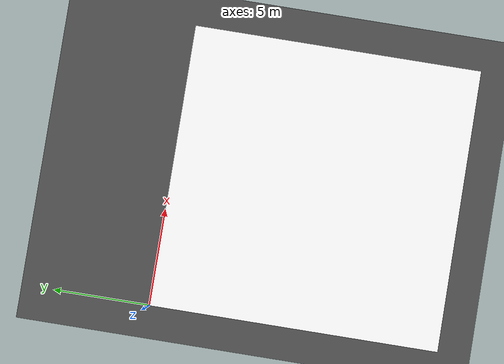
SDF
<?xml version="1.0"?>

<sdf version='1.6'>
  <world name='bfmc_official'>
    <gravity>0 0 -9.8</gravity>
    <light name='c1' type='point'>
      <pose frame=''>0 0 2 0 -0 0</pose>
      <diffuse>125 125 125 125</diffuse>
      <specular>50 50 50 50</specular>
      <attenuation>
        <range>20</range>
        <constant>0.3</constant>
        <quadratic>0</quadratic>
        <linear>0</linear>
      </attenuation>
      <cast_shadows>0</cast_shadows>
      <direction>0 0 -1</direction>
    </light>
    <light name='c2' type='point'>
      <pose frame=''>15 0 2 0 -0 0</pose>
      <diffuse>125 125 125 125</diffuse>
      <specular>50 50 50 50</specular>
      <attenuation>
        <range>20</range>
        <constant>0.3</constant>
        <quadratic>0</quadratic>
        <linear>0</linear>
      </attenuation>
      <cast_shadows>0</cast_shadows>
      <direction>0 0 -1</direction>
    </light>
    <light name='c3' type='point'>
      <pose frame=''>0 -15 2 0 -0 0</pose>
      <diffuse>125 125 125 125</diffuse>
      <specular>50 50 50 50</specular>
      <attenuation>
        <range>20</range>
        <constant>0.3</constant>
        <quadratic>0</quadratic>
        <linear>0</linear>
      </attenuation>
      <cast_shadows>0</cast_shadows>
      <direction>0 0 -1</direction>
    </light>
    <light name='c4' type='point'>
      <pose frame=''>15 -15 2 0 -0 0</pose>
      <diffuse>125 125 125 125</diffuse>
      <specular>50 50 50 50</specular>
      <attenuation>
        <range>50</range>
        <constant>0.3</constant>
        <quadratic>0</quadratic>
        <linear>0</linear>
      </attenuation>
      <cast_shadows>0</cast_shadows>
      <direction>0 0 -1</direction>
    </light>
    <!-- Added Ground Plane to fill the void -->
    <model name="ground_plane">
      <static>true</static>
      <pose>0 0 -0.01 0 0 0</pose> <!-- Slightly below track -->
      <link name="link">
        <collision name="collision">
          <geometry>
            <plane>
              <normal>0 0 1</normal>
              <size>100 100</size>
            </plane>
          </geometry>
        </collision>
        <visual name="visual">
          <geometry>
            <plane>
              <normal>0 0 1</normal>
              <size>100 100</size>
            </plane>
          </geometry>
          <material>
            <script>
              <uri>file://media/materials/scripts/gazebo.material</uri>
              <name>Gazebo/DarkGrey</name>
            </script>
          </material>
        </visual>
      </link>
    </model>
    <model name='track'>
      <static>1</static>
      <link name='link'>
        <collision name='collision'>
          <geometry>
            <plane>
              <normal>0 0 1</normal>
              <size>14.68 14.99</size>
            </plane>
          </geometry>
          <surface>
            <contact>
              <collide_bitmask>65535</collide_bitmask>
              <ode/>
            </contact>
            <friction>
              <ode>
                <mu>1</mu>
                <mu2>1</mu2>
              </ode>
              <torsional>
                <ode/>
              </torsional>
            </friction>
            <bounce/>
          </surface>
          <max_contacts>10</max_contacts>
        </collision>
        <visual name='visual'>
          <cast_shadows>1</cast_shadows>
          <transparency>0</transparency>
          <geometry>
            <plane>
              <normal>0 0 1</normal>
              <size>14.68 14.99</size>
            </plane>
          </geometry>
          <material>
            <ambient>1 1 1 1</ambient>
            <diffuse>1 1 1 1</diffuse>
            <specular>0 0 0 0</specular>
            <emissive>1 1 1 1</emissive>
            <script>
              <uri>model://track/materials/scripts</uri>
              <uri>model://track/materials/textures</uri>
              <name>BFMC_MATERIAL</name>
            </script>
          </material>
        </visual>
        <self_collide>0</self_collide>
        <enable_wind>0</enable_wind>
        <kinematic>0</kinematic>
      </link>
      <pose frame=''>7.34 -7.495 0 0 -0 0</pose>
    </model>
    <magnetic_field>6e-06 2.3e-05 -4.2e-05</magnetic_field>
    <atmosphere type='adiabatic'/>
    <physics name='default_physics' default='0' type='ode'>
      <max_step_size>0.001</max_step_size>
      <real_time_factor>1</real_time_factor>
      <real_time_update_rate>1000</real_time_update_rate>
    </physics>
    <scene>
      <ambient>0.4 0.4 0.4 1</ambient>
      <background>0.7 0.7 0.7 1</background>
      <shadows>1</shadows>
    </scene>
    <audio>
      <device>default</device>
    </audio>
    <wind/>
    <spherical_coordinates>
      <surface_model>EARTH_WGS84</surface_model>
      <latitude_deg>0</latitude_deg>
      <longitude_deg>0</longitude_deg>
      <elevation>0</elevation>
      <heading_deg>0</heading_deg>
    </spherical_coordinates>
    <gui fullscreen='0'>
      <camera name='user_camera'>
        <pose frame=''>1.37037 -20.0726 2.74517 0 0.319643 1.1482</pose>
        <view_controller>orbit</view_controller>
        <projection_type>perspective</projection_type>
      </camera>
    </gui>
  </world>
</sdf>
